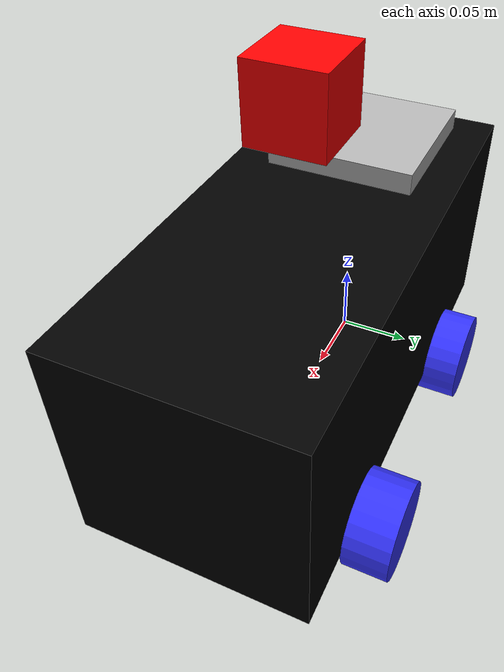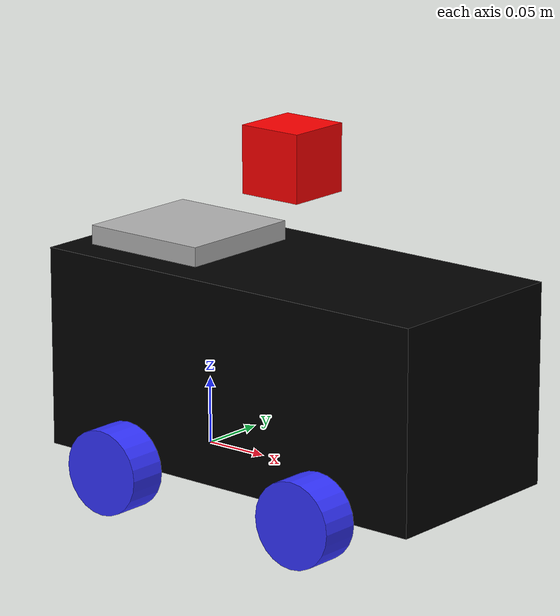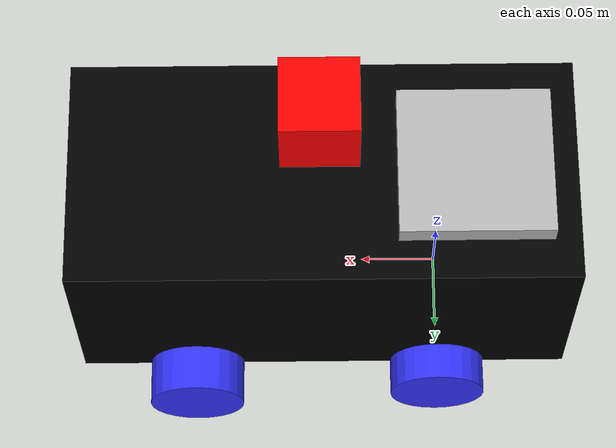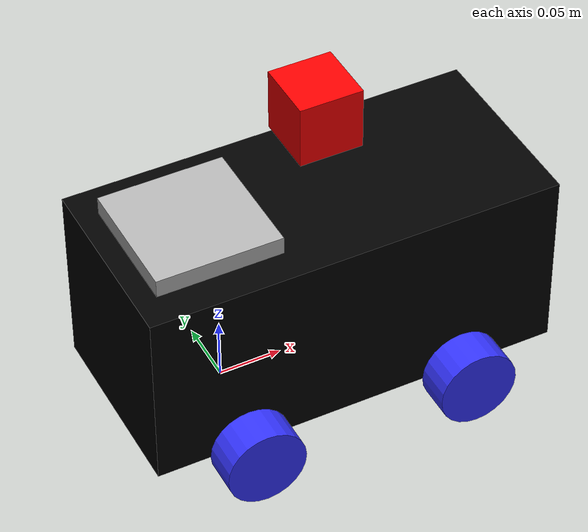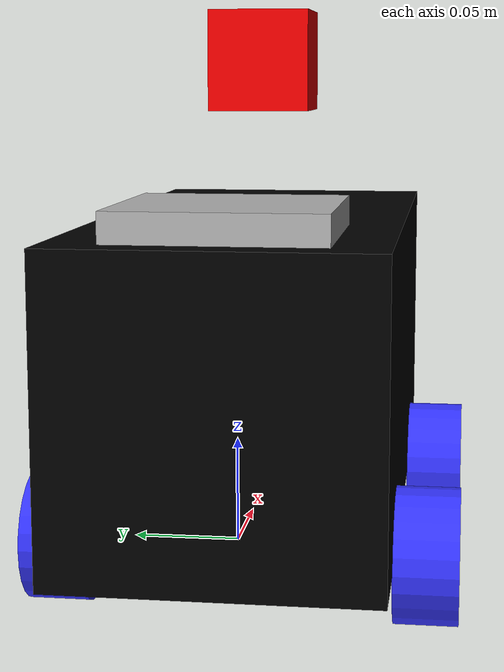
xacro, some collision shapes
<?xml version="1.0"?>
<robot xmlns:xacro="http://www.ros.org/wiki/xacro"  name="robot">

     <xacro:include filename="robot_core.xacro"/>

     <xacro:include filename="gazebo_control.xacro"/>

     <xacro:include filename="robot_camera.xacro"/>

     <xacro:include filename="robot_lidar.xacro"/>

</robot>

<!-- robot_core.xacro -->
<robot xmlns:xacro="http://www.ros.org/wiki/xacro" >

    <xacro:include filename="inertial_macros.xacro"/>

    <material name="white">
        <color rgba="1 1 1 1" />
    </material>

    <material name="orange">
        <color rgba="1 0.3 0.1 1"/>
    </material>

    <material name="blue">
        <color rgba="0.2 0.2 1 1"/>
    </material>

    <material name="black">
        <color rgba="0 0 0 1"/>
    </material>

    <material name="red">
        <color rgba="1 0 0 1"/>
    </material>

    <xacro:property name="camera_link" value="0.05" />

    <!-- BASE LINK -->

    <link name="base_link">

    </link>

    <!-- CHASSIS LINK -->
    <joint name="chassis_joint" type="fixed">
        <parent link="base_link"/>
        <child link="chassis"/>
        <origin xyz="-0.1 0 0"/>
    </joint>

    <link name="chassis">
        <visual>
            <origin xyz="0.1778 0 0.075"/>
            <geometry>
                <box size="0.3302 0.1524 0.15"/>
            </geometry>
            <material name="black"/>
        </visual>
        <collision>
            <origin xyz="0.1778 0 0.075"/>
            <geometry>
                <box size="0.3302 0.1524 0.15"/>
            </geometry>
        </collision>
        <xacro:inertial_box mass="0.5" x="0.33" y="0.15" z="0.15">
            <origin xyz="0.1778 0 0.075" rpy="0 0 0"/>
        </xacro:inertial_box>
    </link>

    <gazebo reference="chassis">
        <material>Gazebo/Black</material>
    </gazebo>

    <!-- FRONT LEFT WHEEL LINK -->
    <joint name="front_left_wheel_joint" type="fixed">
        <parent link="base_link"/>
        <child link="front_left_wheel"/>
        <origin xyz="0.165 0.091 0" rpy="-${pi/2} 0 0" />
        <axis xyz="0 0 1"/>
    </joint>

    <link name="front_left_wheel">
        <visual>
            <geometry>
                <cylinder radius="0.032" length="0.03"/>
            </geometry>
            <material name="blue"/>
        </visual>
        <collision>
            <geometry>
                <cylinder radius="0.032" length="0.03"/>
            </geometry>
        </collision>
        <xacro:inertial_cylinder mass="0.1" length="0.03" radius="0.04">
            <origin xyz="0 0 0" rpy="0 0 0"/>
        </xacro:inertial_cylinder>
    </link>

    <gazebo reference="front_left_wheel">
        <material>Gazebo/Blue</material>
        <mu1 value="0.018"/>
        <mu2 value="0.018"/>
    </gazebo>

    <!-- BACK LEFT WHEEL LINK -->
    <joint name="back_left_wheel_joint" type="fixed">
        <parent link="base_link"/>
        <child link="back_left_wheel"/>
        <origin xyz="0 0.085 0" rpy="-${pi/2} 0 0" />
        <axis xyz="0 0 1"/>
    </joint>

    <link name="back_left_wheel">
        <visual>
            <geometry>
                <cylinder radius="0.032" length="0.03"/>
            </geometry>
            <material name="blue"/>
        </visual>
        <collision>
            <geometry>
                <cylinder radius="0.032" length="0.03"/>
            </geometry>
        </collision>
        <xacro:inertial_cylinder mass="0.1" length="0.03" radius="0.04">
            <origin xyz="0 0 0" rpy="0 0 0"/>
        </xacro:inertial_cylinder>
    </link>

    <gazebo reference="back_left_wheel">
        <material>Gazebo/Blue</material>
        <mu1 value="0.018"/>
        <mu2 value="0.018"/>
    </gazebo>

    <!-- FRONT RIGHT WHEEL LINK -->
    <joint name="front_right_wheel_joint" type="fixed">
        <parent link="base_link"/>
        <child link="front_right_wheel"/>
        <origin xyz="0.165 -0.091 0" rpy="${pi/2} 0 0" />
        <axis xyz="0 0 -1"/>
    </joint>

    <link name="front_right_wheel">
        <visual>
            <geometry>
                <cylinder radius="0.032" length="0.03"/>
            </geometry>
            <material name="blue"/>
        </visual>
        <collision>
            <geometry>
                <cylinder radius="0.032" length="0.03"/>
            </geometry>
        </collision>
        <xacro:inertial_cylinder mass="0.1" length="0.04" radius="0.05">
            <origin xyz="0 0 0" rpy="0 0 0"/>
        </xacro:inertial_cylinder>
    </link>

    <gazebo reference="front_right_wheel">
        <material>Gazebo/Blue</material>
        <mu1 value="0.018"/>
        <mu2 value="0.018"/>
    </gazebo>

    <!-- BACK RIGHT WHEEL LINK -->
    <joint name="back_right_wheel_joint" type="fixed">
        <parent link="base_link"/>
        <child link="back_right_wheel"/>
        <origin xyz="-0.0128 -0.091 0" rpy="${pi/2} 0 0" />
        <axis xyz="0 0 -1"/>
    </joint>

    <link name="back_right_wheel">
        <visual>
            <geometry>
                <cylinder radius="0.032" length="0.03"/>
            </geometry>
            <material name="blue"/>hjnbm
        </visual>
        <collision>
            <geometry>
                <cylinder radius="0.032" length="0.03"/>
            </geometry>
        </collision>
        <xacro:inertial_cylinder mass="0.1" length="0.04" radius="0.05">
            <origin xyz="0 0 0" rpy="0 0 0"/>
        </xacro:inertial_cylinder>
    </link>

    <gazebo reference="back_right_wheel">
        <material>Gazebo/Blue</material>
        <mu1 value="0.018"/>
        <mu2 value="0.018"/>
    </gazebo>

    <!-- CAMERA LINK -->
    <joint name="camera_joint" type="fixed">
        <axis xyz="0 0 0" />
        <origin xyz="0.08 -0.0020 0.2286" rpy="0 0 0"/>
        <parent link="base_link"/>
        <child link="camera_link"/>
    </joint>

    <link name="camera_link">
        <collision>
            <origin xyz="0.08 -0.0020 0.2286" rpy="0 0 0"/>
            <geometry>
                <box size="${camera_link} ${camera_link} ${camera_link}"/>
            </geometry>
        </collision>

        <visual>
            <origin xyz="0 0 0" rpy="0 0 0"/>
            <geometry>
                <box size="${camera_link} ${camera_link} ${camera_link}"/>
            </geometry>
            <material name="red"/>
        </visual>

        <inertial>
            <mass value="1e-5" />
            <origin xyz="0.08 -0.0020 0.2286" rpy="0 0 0"/>
            <inertia ixx="1e-6" ixy="0" ixz="0" iyy="1e-6" iyz="0" izz="1e-6" />
        </inertial>
    </link>

    <gazebo reference="camera_link">
        <material>Gazebo/Red</material>
    </gazebo>

</robot>

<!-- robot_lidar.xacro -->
<robot xmlns:xacro="http://www.ros.org/wiki/xacro">

    <joint name="laser_joint" type="fixed">
        <parent link="chassis"/>
        <child link="laser_frame"/>
        <origin xyz = "0.08 0 0.1143" rpy="0 0 0"/>
    </joint>

    <link name = "laser_frame">
        <visual>
            <geometry>
                <mesh filename="description/hokuyo.dae"/>
            </geometry>
        </visual>
        <collision>
            <origin xyz="0 0 0" rpy="0 0 0"/>
            <geometry>
                <box size="0.1 0.1 0.1"/>
            </geometry>
        </collision>
        <inertial>
            <mass value="1e-5" />
            <origin xyz="0 0 0" rpy="0 0 0"/>
            <inertia ixx="1e-6" ixy="0" ixz="0" iyy="1e-6" iyz="0" izz="1e-6" />
        </inertial>
    </link>

    <gazebo reference="laser_frame">
        <sensor name="laser" type="ray">
            <pose> 0 0 0 0 0 0 </pose>
            <visualize>true</visualize>
            <update_rate>10</update_rate>
            <ray>
                <scan>
                    <horizontal>
                        <samples>360</samples>
                        <resolution>1</resolution>
                        <min_angle>-3.14</min_angle>
                        <max_angle>3.14</max_angle>
                    </horizontal>
                </scan>
                <range>
                    <min>0.3</min>
                    <max>12</max>
                    <resolution>0.01</resolution>
                </range>
            </ray>
            <plugin name="laser_controller" filename="libgazebo_ros_ray_sensor.so">
                <ros>
                    <argument>~/out:=scan</argument>
                </ros>
                <output_type>sensor_msgs/LaserScan</output_type>
                <frame_name>laser_frame</frame_name>
            </plugin>
        </sensor>
    </gazebo>

</robot>
